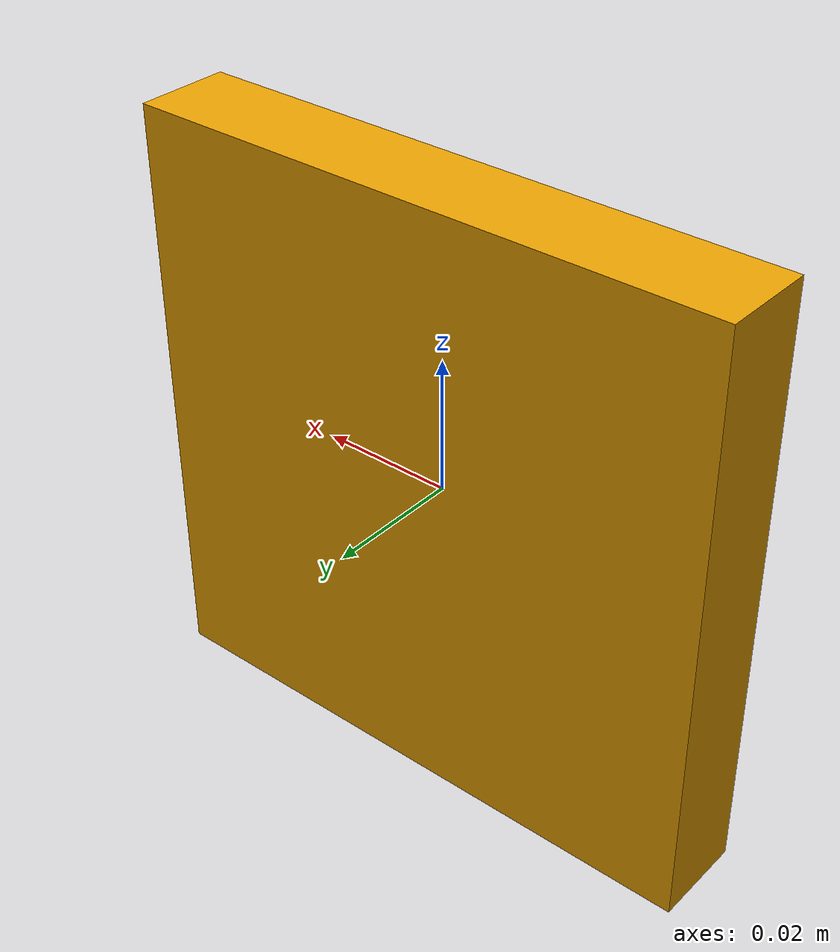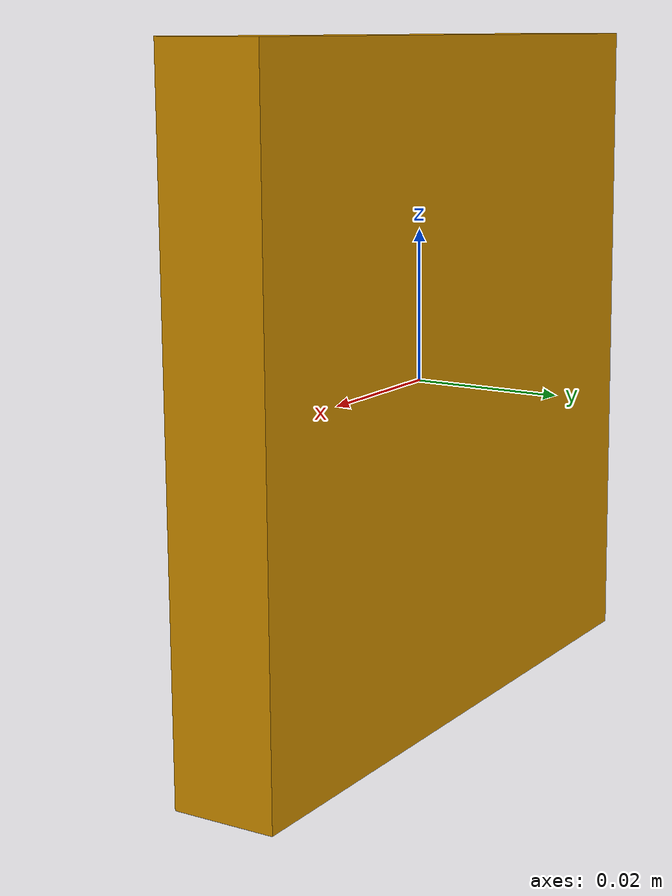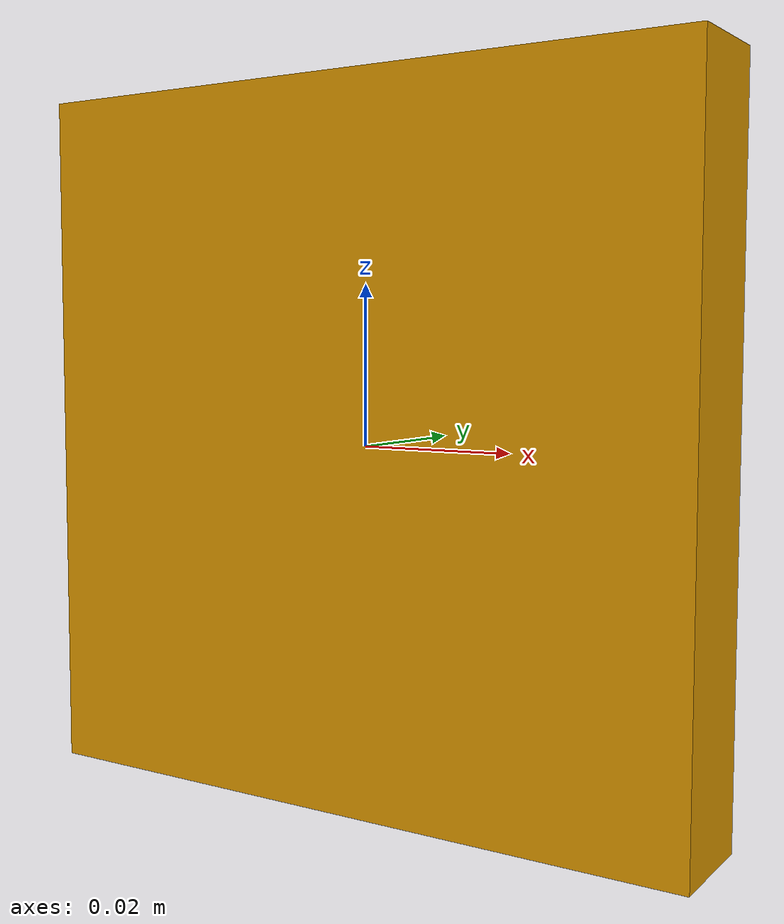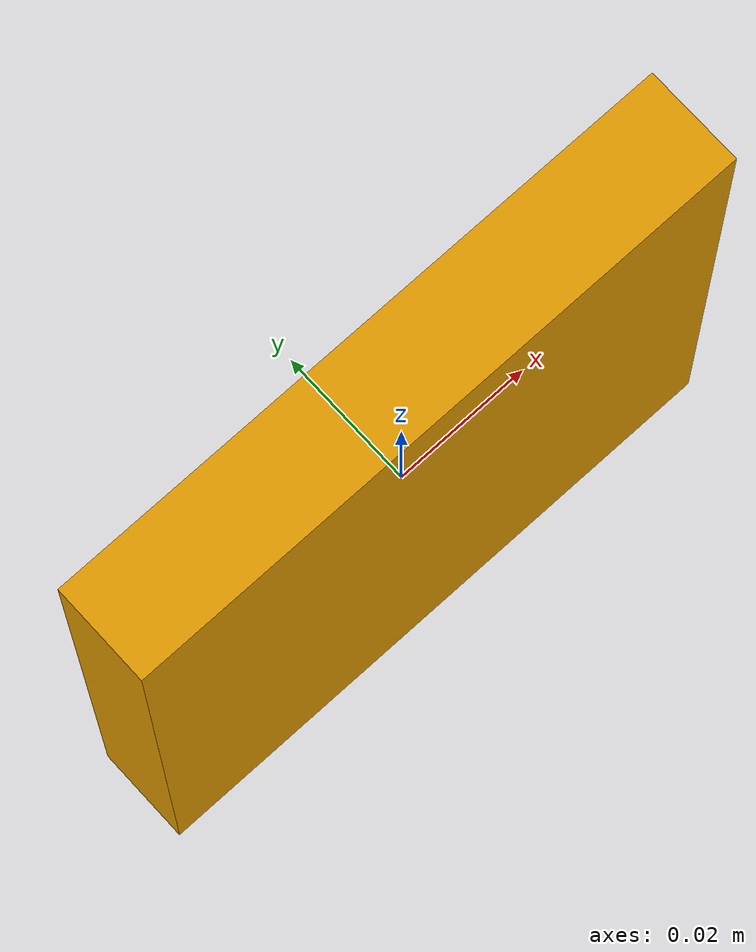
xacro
<?xml version="1.0"?>
<robot name="simple_artag">
  <link name="simple_box_link">
    <inertial>
      <origin xyz="0 0 0" rpy="0 0 0"/>
      <mass value="1.0" />
      <inertia ixx="0.07416" ixy="0.0" ixz="0.0" iyy="0.0585416" iyz="0.0" izz="0.02604"/>
    </inertial>
    <collision>
      <origin xyz="0 0 0" rpy="0 0 0"/>
      <geometry>
        <box size="0.2 0.2 0.2"/>
      </geometry>
    </collision>
    <visual>
      <origin xyz="0 0 0" rpy="0 1.57 1.57"/>
      <geometry>
        <mesh filename="package://waffle_slam/worlds/artag.dae"/>
      </geometry>
    </visual>
  </link>

  <gazebo reference="simple_box_link">
    <kp>100000.0</kp>
    <kd>100000.0</kd>
    <mu1>0.1</mu1>
    <mu2>0.1</mu2>
    <fdir1>1 0 0</fdir1>
  </gazebo>

</robot>
